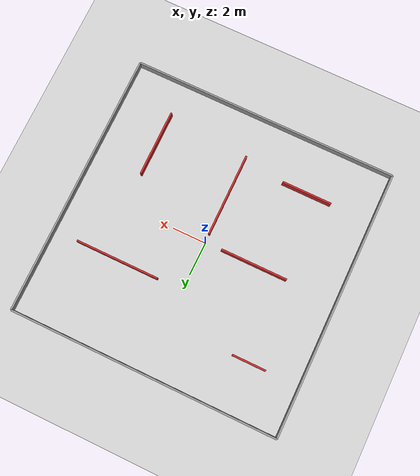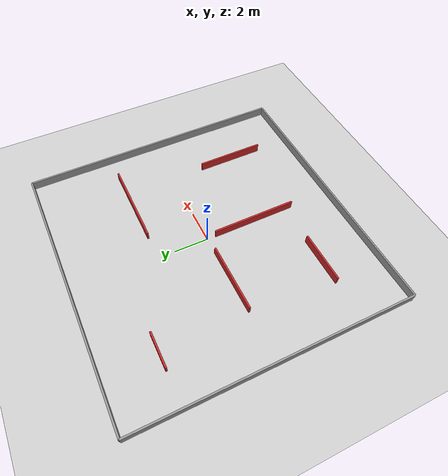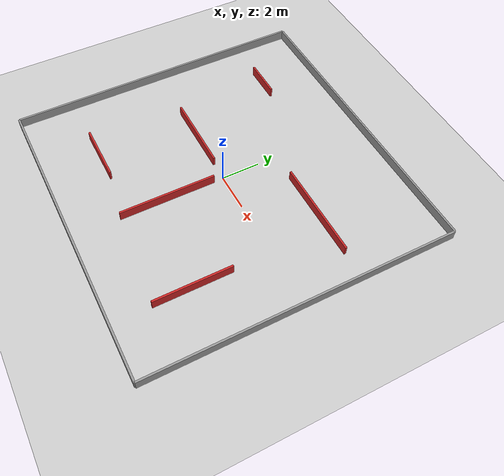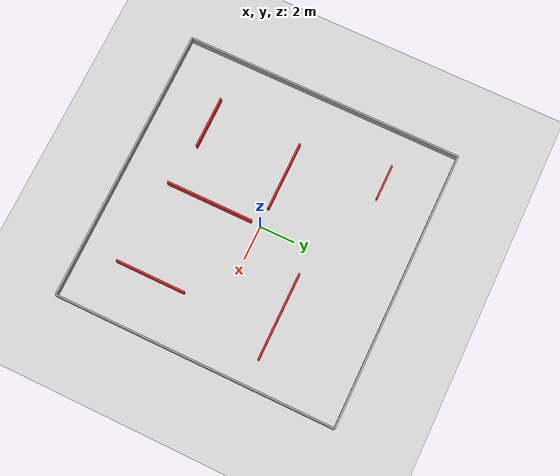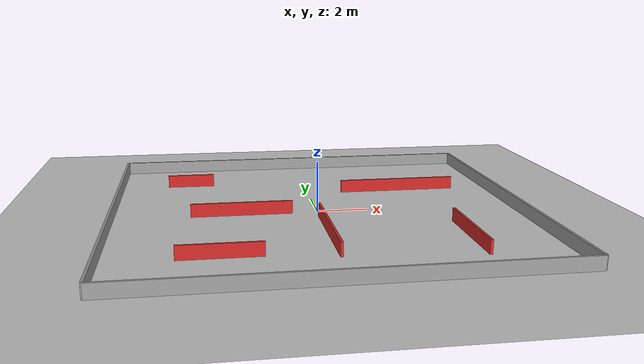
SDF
<?xml version="1.0" ?>
<sdf version="1.7">
  <world name="default">

    <!-- Sun Light -->
    <light name='sun' type='directional'>
      <cast_shadows>1</cast_shadows>
      <pose>0 0 10 0 -0 0</pose>
      <diffuse>0.8 0.8 0.8 1</diffuse>
      <specular>0.2 0.2 0.2 1</specular>
      <attenuation>
        <range>1000</range>
        <constant>0.9</constant>
        <linear>0.01</linear>
        <quadratic>0.001</quadratic>
      </attenuation>
      <direction>-0.5 0.1 -0.9</direction>
    </light>

    <!-- Ground Plane -->
    <model name='ground_plane'>
      <static>1</static>
      <link name='link'>
        <collision name='collision'>
          <geometry>
            <plane>
              <normal>0 0 1</normal>
              <size>100 100</size>
            </plane>
          </geometry>
        </collision>
        <visual name='visual'>
          <cast_shadows>0</cast_shadows>
          <geometry>
            <plane>
              <normal>0 0 1</normal>
              <size>100 100</size>
            </plane>
          </geometry>
          <material>
            <script>
              <uri>file://media/materials/scripts/gazebo.material</uri>
              <name>Gazebo/Grey</name>
            </script>
          </material>
        </visual>
      </link>
    </model>

    <!-- Physics Settings -->
    <physics type='ode'>
      <max_step_size>0.001</max_step_size>
      <real_time_factor>1</real_time_factor>
      <real_time_update_rate>1000</real_time_update_rate>
    </physics>

    <!-- Scene Settings -->
    <scene>
      <ambient>0.4 0.4 0.4 1</ambient>
      <background>0.7 0.7 0.7 1</background>
      <shadows>1</shadows>
    </scene>

    <!-- Simple Labyrinth Model -->
    <model name='simple_labyrinth'>
      <static>1</static>
      <pose>0 0 0 0 0 0</pose>

      <!-- Tembok Batas: tetap static -->
      <link name='wall_top'>
        <pose>0 8 0 0 0 0</pose>
        <collision name='collision'>
          <geometry><box><size>16 0.1 1</size></box></geometry>
        </collision>
        <visual name='visual'>
          <geometry><box><size>16 0.1 1</size></box></geometry>
          <material><script><uri>file://media/materials/scripts/gazebo.material</uri><name>Gazebo/Grey</name></script></material>
        </visual>
      </link>

      <link name='wall_bottom'>
        <pose>0 -8 0 0 0 0</pose>
        <collision name='collision'>
          <geometry><box><size>16 0.1 1</size></box></geometry>
        </collision>
        <visual name='visual'>
          <geometry><box><size>16 0.1 1</size></box></geometry>
          <material><script><uri>file://media/materials/scripts/gazebo.material</uri><name>Gazebo/Grey</name></script></material>
        </visual>
      </link>

      <link name='wall_left'>
        <pose>-8 0 0 0 0 0</pose>
        <collision name='collision'>
          <geometry><box><size>0.1 16 1</size></box></geometry>
        </collision>
        <visual name='visual'>
          <geometry><box><size>0.1 16 1</size></box></geometry>
          <material><script><uri>file://media/materials/scripts/gazebo.material</uri><name>Gazebo/Grey</name></script></material>
        </visual>
      </link>

      <link name='wall_right'>
        <pose>8 0 0 0 0 0</pose>
        <collision name='collision'>
          <geometry><box><size>0.1 16 1</size></box></geometry>
        </collision>
        <visual name='visual'>
          <geometry><box><size>0.1 16 1</size></box></geometry>
          <material><script><uri>file://media/materials/scripts/gazebo.material</uri><name>Gazebo/Grey</name></script></material>
        </visual>
      </link>

      <!-- Obstacles: editable / movable -->
      <link name='obstacle_1'><static>0</static>
        <pose>-3 0 0 0 0 0</pose>
        <collision name='collision'><geometry><box><size>4 0.1 1</size></box></geometry></collision>
        <visual name='visual'><geometry><box><size>4 0.1 1</size></box></geometry><material><script><uri>file://media/materials/scripts/gazebo.material</uri><name>Gazebo/Red</name></script></material></visual>
      </link>

      <link name='obstacle_2'><static>0</static>
        <pose>0 -3 0 0 0 0</pose>
        <collision name='collision'><geometry><box><size>0.1 5 1</size></box></geometry></collision>
        <visual name='visual'><geometry><box><size>0.1 5 1</size></box></geometry><material><script><uri>file://media/materials/scripts/gazebo.material</uri><name>Gazebo/Red</name></script></material></visual>
      </link>

      <link name='obstacle_3'><static>0</static>
        <pose>4 3 0 0 0 0</pose>
        <collision name='collision'><geometry><box><size>5 0.1 1</size></box></geometry></collision>
        <visual name='visual'><geometry><box><size>5 0.1 1</size></box></geometry><material><script><uri>file://media/materials/scripts/gazebo.material</uri><name>Gazebo/Red</name></script></material></visual>
      </link>

      <link name='obstacle_4'><static>0</static>
        <pose>-4 -5 0 0 0 0</pose>
        <collision name='collision'><geometry><box><size>3 0.1 1</size></box></geometry></collision>
        <visual name='visual'><geometry><box><size>3 0.1 1</size></box></geometry><material><script><uri>file://media/materials/scripts/gazebo.material</uri><name>Gazebo/Red</name></script></material></visual>
      </link>

      <link name='obstacle_5'><static>0</static>
        <pose>5 -4 0 0 0 0</pose>
        <collision name='collision'><geometry><box><size>0.1 4 1</size></box></geometry></collision>
        <visual name='visual'><geometry><box><size>0.1 4 1</size></box></geometry><material><script><uri>file://media/materials/scripts/gazebo.material</uri><name>Gazebo/Red</name></script></material></visual>
      </link>

      <link name='obstacle_6'><static>0</static>
        <pose>-5 5 0 0 0 0</pose>
        <collision name='collision'><geometry><box><size>2 0.1 1</size></box></geometry></collision>
        <visual name='visual'><geometry><box><size>2 0.1 1</size></box></geometry><material><script><uri>file://media/materials/scripts/gazebo.material</uri><name>Gazebo/Red</name></script></material></visual>
      </link>

    </model>

    <!-- GUI Settings -->
    <gui fullscreen='0'>
      <camera name='user_camera'>
        <pose>0 0 20 0 1.57 0</pose>
        <view_controller>orbit</view_controller>
      </camera>
    </gui>

  </world>
</sdf>
